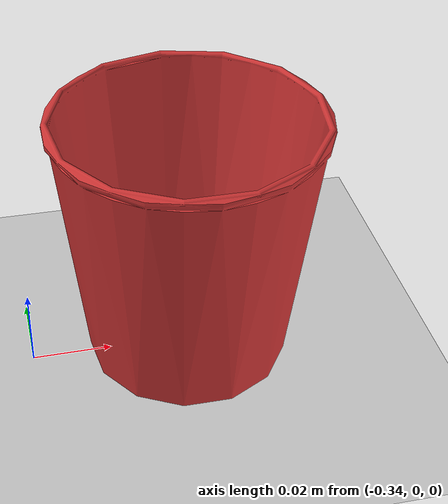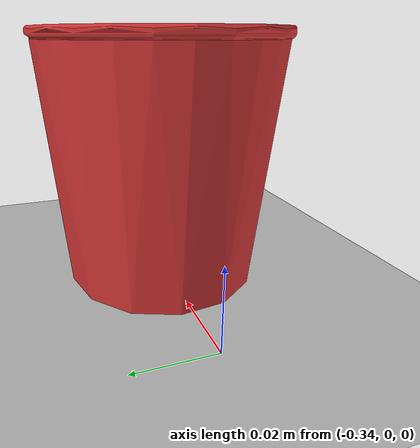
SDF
<?xml version="1.0"?>
<sdf version="1.8">
  <world name="plain">
    <physics name="default" type="ode">
      <max_step_size>0.05</max_step_size>
      <real_time_factor>1.0</real_time_factor>
    </physics>
    <include>
      <uri>model://Sun</uri>
    </include>
    <include>
      <uri>model://Ground Plane</uri>
    </include>

    <!-- Cup object for MTC pick-and-place task -->
    <include>
      <uri>model://cup</uri>
      <pose>-0.3 0.0 0.033 0 0 0</pose>
    </include>
  </world>
</sdf>

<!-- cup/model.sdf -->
<sdf version="1.7">
  <model name="cup">
    <static>true</static>
    <link name="link">
      <inertial>
        <mass>0.1</mass>
        <inertia>
          <ixx>0.000025</ixx>
          <iyy>0.000025</iyy>
          <izz>0.000005</izz>
          <ixy>0</ixy>
          <ixz>0</ixz>
          <iyz>0</iyz>
        </inertia>
      </inertial>
      <visual name="visual">
        <geometry>
          <mesh>
            <uri>model://meshes/cup.stl</uri>
            <scale>0.001 0.001 0.001</scale>
          </mesh>
        </geometry>
        <material>
          <ambient>0.8 0.2 0.2 1</ambient>
          <diffuse>0.8 0.2 0.2 1</diffuse>
          <specular>0.2 0.2 0.2 1</specular>
        </material>
      </visual>
      <collision
        name="collision">
        <geometry>
          <mesh>
            <uri>model://meshes/cup.stl</uri>
            <scale>0.001 0.001 0.001</scale>
          </mesh>
        </geometry>
        <surface>
          <contact>
            <ode>
              <max_vel>0.1</max_vel>
              <min_depth>0.001</min_depth>
              <kp>1000000.0</kp>
              <kd>1.0</kd>
            </ode>
          </contact>
          <friction>
            <ode>
              <mu>0.5</mu>
              <mu2>0.5</mu2>
              <slip1>0.0</slip1>
              <slip2>0.0</slip2>
            </ode>
          </friction>
        </surface>
      </collision>
      --> </link>
  </model>
</sdf>
